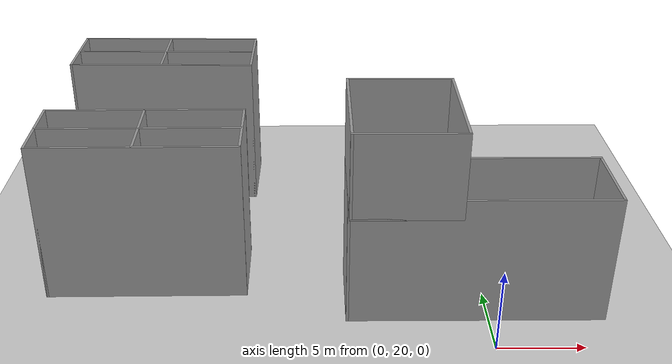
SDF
<sdf version="1.7">
 <world name="default">
  <model name="ground_plane">
   <static>1</static>
   <link name="link">
    <collision name="collision">
     <geometry><plane><normal>0 0 1</normal><size>100 100</size></plane></geometry>
     <surface><friction><ode><mu>100</mu><mu2>50</mu2></ode></friction></surface>
    </collision>
    <visual name="visual">
     <cast_shadows>0</cast_shadows>
     <geometry><plane><normal>0 0 1</normal><size>100 100</size></plane></geometry>
     <material>
      <script><uri>file://media/materials/scripts/gazebo.material</uri><name>Gazebo/Grey</name></script>
     </material>
    </visual>
   </link>
  </model>
  <model name="building5_clone_clone_clone_0">
   <link name="Wall_64">
    <pose>-1e-06 -4.8275 0 0 -0 0</pose>
    <inertial>
     <mass>1</mass>
     <inertia><ixx>1</ixx><ixy>0</ixy><ixz>0</ixz><iyy>1</iyy><iyz>0</iyz><izz>1</izz></inertia>
    </inertial>
    <visual name="Wall_64_Visual">
     <pose>0 0 5 0 -0 0</pose>
     <geometry><box><size>12 0.15 10</size></box></geometry>
     <material>
      <script><uri>file://media/materials/scripts/gazebo.material</uri><name>Gazebo/Grey</name></script>
      <ambient>0.5 0.5 0.5 1</ambient>
      <shader type="pixel"><normal_map>__default__</normal_map></shader>
      <diffuse>0.5 0.5 0.5 1</diffuse>
      <specular>0.5 0.5 0.5 1</specular>
      <emissive>0 0 0 1</emissive>
     </material>
     <meta><layer>0</layer></meta>
    </visual>
    <collision name="Wall_64_Collision">
     <pose>0 0 5 0 -0 0</pose>
     <geometry><box><size>12 0.15 10</size></box></geometry>
     <surface>
      <friction>
       <ode><mu>1</mu><mu2>1</mu2><fdir1>0 0 0</fdir1><slip1>0</slip1><slip2>0</slip2></ode>
       <torsional>
        <coefficient>1</coefficient>
        <patch_radius>0</patch_radius>
        <surface_radius>0</surface_radius>
        <use_patch_radius>1</use_patch_radius>
        <ode><slip>0</slip></ode>
       </torsional>
      </friction>
      <bounce><restitution_coefficient>0</restitution_coefficient><threshold>1e+06</threshold></bounce>
      <contact>
       <collide_without_contact>0</collide_without_contact>
       <collide_without_contact_bitmask>1</collide_without_contact_bitmask>
       <collide_bitmask>1</collide_bitmask>
       <ode>
        <soft_cfm>0</soft_cfm>
        <soft_erp>0.2</soft_erp>
        <kp>1e+13</kp>
        <kd>1</kd>
        <max_vel>0.01</max_vel>
        <min_depth>0</min_depth>
       </ode>
       <bullet>
        <split_impulse>1</split_impulse>
        <split_impulse_penetration_threshold>-0.01</split_impulse_penetration_threshold>
        <soft_cfm>0</soft_cfm>
        <soft_erp>0.2</soft_erp>
        <kp>1e+13</kp>
        <kd>1</kd>
       </bullet>
      </contact>
     </surface>
    </collision>
   </link>
   <link name="Wall_65">
    <pose>5.925 -2.4025 0 0 -0 1.5708</pose>
    <inertial>
     <mass>1</mass>
     <inertia><ixx>1</ixx><ixy>0</ixy><ixz>0</ixz><iyy>1</iyy><iyz>0</iyz><izz>1</izz></inertia>
    </inertial>
    <visual name="Wall_65_Visual">
     <pose>0 0 5 0 -0 0</pose>
     <geometry><box><size>5 0.15 10</size></box></geometry>
     <material>
      <script><uri>file://media/materials/scripts/gazebo.material</uri><name>Gazebo/Grey</name></script>
      <ambient>0.5 0.5 0.5 1</ambient>
      <shader type="pixel"><normal_map>__default__</normal_map></shader>
      <diffuse>0.5 0.5 0.5 1</diffuse>
      <specular>0.5 0.5 0.5 1</specular>
      <emissive>0 0 0 1</emissive>
     </material>
     <meta><layer>0</layer></meta>
    </visual>
    <collision name="Wall_65_Collision">
     <pose>0 0 5 0 -0 0</pose>
     <geometry><box><size>5 0.15 10</size></box></geometry>
     <surface>
      <friction>
       <ode><mu>1</mu><mu2>1</mu2><fdir1>0 0 0</fdir1><slip1>0</slip1><slip2>0</slip2></ode>
       <torsional>
        <coefficient>1</coefficient>
        <patch_radius>0</patch_radius>
        <surface_radius>0</surface_radius>
        <use_patch_radius>1</use_patch_radius>
        <ode><slip>0</slip></ode>
       </torsional>
      </friction>
      <bounce><restitution_coefficient>0</restitution_coefficient><threshold>1e+06</threshold></bounce>
      <contact>
       <collide_without_contact>0</collide_without_contact>
       <collide_without_contact_bitmask>1</collide_without_contact_bitmask>
       <collide_bitmask>1</collide_bitmask>
       <ode>
        <soft_cfm>0</soft_cfm>
        <soft_erp>0.2</soft_erp>
        <kp>1e+13</kp>
        <kd>1</kd>
        <max_vel>0.01</max_vel>
        <min_depth>0</min_depth>
       </ode>
       <bullet>
        <split_impulse>1</split_impulse>
        <split_impulse_penetration_threshold>-0.01</split_impulse_penetration_threshold>
        <soft_cfm>0</soft_cfm>
        <soft_erp>0.2</soft_erp>
        <kp>1e+13</kp>
        <kd>1</kd>
       </bullet>
      </contact>
     </surface>
    </collision>
   </link>
   <link name="Wall_66">
    <pose>0 0.0225 0 0 -0 3.14159</pose>
    <inertial>
     <mass>1</mass>
     <inertia><ixx>1</ixx><ixy>0</ixy><ixz>0</ixz><iyy>1</iyy><iyz>0</iyz><izz>1</izz></inertia>
    </inertial>
    <visual name="Wall_66_Visual">
     <pose>0 0 5 0 -0 0</pose>
     <geometry><box><size>12 0.15 10</size></box></geometry>
     <material>
      <script><uri>file://media/materials/scripts/gazebo.material</uri><name>Gazebo/Grey</name></script>
      <ambient>0.5 0.5 0.5 1</ambient>
      <shader type="pixel"><normal_map>__default__</normal_map></shader>
      <diffuse>0.5 0.5 0.5 1</diffuse>
      <specular>0.5 0.5 0.5 1</specular>
      <emissive>0 0 0 1</emissive>
     </material>
     <meta><layer>0</layer></meta>
    </visual>
    <collision name="Wall_66_Collision">
     <pose>0 0 5 0 -0 0</pose>
     <geometry><box><size>12 0.15 10</size></box></geometry>
     <surface>
      <friction>
       <ode><mu>1</mu><mu2>1</mu2><fdir1>0 0 0</fdir1><slip1>0</slip1><slip2>0</slip2></ode>
       <torsional>
        <coefficient>1</coefficient>
        <patch_radius>0</patch_radius>
        <surface_radius>0</surface_radius>
        <use_patch_radius>1</use_patch_radius>
        <ode><slip>0</slip></ode>
       </torsional>
      </friction>
      <bounce><restitution_coefficient>0</restitution_coefficient><threshold>1e+06</threshold></bounce>
      <contact>
       <collide_without_contact>0</collide_without_contact>
       <collide_without_contact_bitmask>1</collide_without_contact_bitmask>
       <collide_bitmask>1</collide_bitmask>
       <ode>
        <soft_cfm>0</soft_cfm>
        <soft_erp>0.2</soft_erp>
        <kp>1e+13</kp>
        <kd>1</kd>
        <max_vel>0.01</max_vel>
        <min_depth>0</min_depth>
       </ode>
       <bullet>
        <split_impulse>1</split_impulse>
        <split_impulse_penetration_threshold>-0.01</split_impulse_penetration_threshold>
        <soft_cfm>0</soft_cfm>
        <soft_erp>0.2</soft_erp>
        <kp>1e+13</kp>
        <kd>1</kd>
       </bullet>
      </contact>
     </surface>
    </collision>
   </link>
   <link name="Wall_67">
    <pose>-5.925 -2.4025 0 0 0 -1.5708</pose>
    <inertial>
     <mass>1</mass>
     <inertia><ixx>1</ixx><ixy>0</ixy><ixz>0</ixz><iyy>1</iyy><iyz>0</iyz><izz>1</izz></inertia>
    </inertial>
    <visual name="Wall_67_Visual">
     <pose>0 0 5 0 -0 0</pose>
     <geometry><box><size>5 0.15 10</size></box></geometry>
     <material>
      <script><uri>file://media/materials/scripts/gazebo.material</uri><name>Gazebo/Grey</name></script>
      <ambient>0.5 0.5 0.5 1</ambient>
      <shader type="pixel"><normal_map>__default__</normal_map></shader>
      <diffuse>0.5 0.5 0.5 1</diffuse>
      <specular>0.5 0.5 0.5 1</specular>
      <emissive>0 0 0 1</emissive>
     </material>
     <meta><layer>0</layer></meta>
    </visual>
    <collision name="Wall_67_Collision">
     <pose>0 0 5 0 -0 0</pose>
     <geometry><box><size>5 0.15 10</size></box></geometry>
     <surface>
      <friction>
       <ode><mu>1</mu><mu2>1</mu2><fdir1>0 0 0</fdir1><slip1>0</slip1><slip2>0</slip2></ode>
       <torsional>
        <coefficient>1</coefficient>
        <patch_radius>0</patch_radius>
        <surface_radius>0</surface_radius>
        <use_patch_radius>1</use_patch_radius>
        <ode><slip>0</slip></ode>
       </torsional>
      </friction>
      <bounce><restitution_coefficient>0</restitution_coefficient><threshold>1e+06</threshold></bounce>
      <contact>
       <collide_without_contact>0</collide_without_contact>
       <collide_without_contact_bitmask>1</collide_without_contact_bitmask>
       <collide_bitmask>1</collide_bitmask>
       <ode>
        <soft_cfm>0</soft_cfm>
        <soft_erp>0.2</soft_erp>
        <kp>1e+13</kp>
        <kd>1</kd>
        <max_vel>0.01</max_vel>
        <min_depth>0</min_depth>
       </ode>
       <bullet>
        <split_impulse>1</split_impulse>
        <split_impulse_penetration_threshold>-0.01</split_impulse_penetration_threshold>
        <soft_cfm>0</soft_cfm>
        <soft_erp>0.2</soft_erp>
        <kp>1e+13</kp>
        <kd>1</kd>
       </bullet>
      </contact>
     </surface>
    </collision>
   </link>
   <link name="Wall_69">
    <pose>0 -2.3885 0 0 0 -1.5708</pose>
    <inertial>
     <mass>1</mass>
     <inertia><ixx>1</ixx><ixy>0</ixy><ixz>0</ixz><iyy>1</iyy><iyz>0</iyz><izz>1</izz></inertia>
    </inertial>
    <visual name="Wall_69_Visual">
     <pose>0 0 5 0 -0 0</pose>
     <geometry><box><size>4.9 0.15 10</size></box></geometry>
     <material>
      <script><uri>file://media/materials/scripts/gazebo.material</uri><name>Gazebo/Grey</name></script>
      <ambient>0.5 0.5 0.5 1</ambient>
      <shader type="pixel"><normal_map>__default__</normal_map></shader>
      <diffuse>0.5 0.5 0.5 1</diffuse>
      <specular>0.5 0.5 0.5 1</specular>
      <emissive>0 0 0 1</emissive>
     </material>
     <meta><layer>0</layer></meta>
    </visual>
    <collision name="Wall_69_Collision">
     <pose>0 0 5 0 -0 0</pose>
     <geometry><box><size>4.9 0.15 10</size></box></geometry>
     <surface>
      <friction>
       <ode><mu>1</mu><mu2>1</mu2><fdir1>0 0 0</fdir1><slip1>0</slip1><slip2>0</slip2></ode>
       <torsional>
        <coefficient>1</coefficient>
        <patch_radius>0</patch_radius>
        <surface_radius>0</surface_radius>
        <use_patch_radius>1</use_patch_radius>
        <ode><slip>0</slip></ode>
       </torsional>
      </friction>
      <bounce><restitution_coefficient>0</restitution_coefficient><threshold>1e+06</threshold></bounce>
      <contact>
       <collide_without_contact>0</collide_without_contact>
       <collide_without_contact_bitmask>1</collide_without_contact_bitmask>
       <collide_bitmask>1</collide_bitmask>
       <ode>
        <soft_cfm>0</soft_cfm>
        <soft_erp>0.2</soft_erp>
        <kp>1e+13</kp>
        <kd>1</kd>
        <max_vel>0.01</max_vel>
        <min_depth>0</min_depth>
       </ode>
       <bullet>
        <split_impulse>1</split_impulse>
        <split_impulse_penetration_threshold>-0.01</split_impulse_penetration_threshold>
        <soft_cfm>0</soft_cfm>
        <soft_erp>0.2</soft_erp>
        <kp>1e+13</kp>
        <kd>1</kd>
       </bullet>
      </contact>
     </surface>
    </collision>
   </link>
   <link name="Wall_74">
    <pose>-0.024 -2.4605 0 0 -0 0</pose>
    <inertial>
     <mass>1</mass>
     <inertia><ixx>1</ixx><ixy>0</ixy><ixz>0</ixz><iyy>1</iyy><iyz>0</iyz><izz>1</izz></inertia>
    </inertial>
    <visual name="Wall_74_Visual">
     <pose>0 0 5 0 -0 0</pose>
     <geometry><box><size>11.9 0.15 10</size></box></geometry>
     <material>
      <script><uri>file://media/materials/scripts/gazebo.material</uri><name>Gazebo/Grey</name></script>
      <ambient>0.5 0.5 0.5 1</ambient>
      <shader type="pixel"><normal_map>__default__</normal_map></shader>
      <diffuse>0.5 0.5 0.5 1</diffuse>
      <specular>0.5 0.5 0.5 1</specular>
      <emissive>0 0 0 1</emissive>
     </material>
     <meta><layer>0</layer></meta>
    </visual>
    <collision name="Wall_74_Collision">
     <pose>0 0 5 0 -0 0</pose>
     <geometry><box><size>11.9 0.15 10</size></box></geometry>
     <surface>
      <friction>
       <ode><mu>1</mu><mu2>1</mu2><fdir1>0 0 0</fdir1><slip1>0</slip1><slip2>0</slip2></ode>
       <torsional>
        <coefficient>1</coefficient>
        <patch_radius>0</patch_radius>
        <surface_radius>0</surface_radius>
        <use_patch_radius>1</use_patch_radius>
        <ode><slip>0</slip></ode>
       </torsional>
      </friction>
      <bounce><restitution_coefficient>0</restitution_coefficient><threshold>1e+06</threshold></bounce>
      <contact>
       <collide_without_contact>0</collide_without_contact>
       <collide_without_contact_bitmask>1</collide_without_contact_bitmask>
       <collide_bitmask>1</collide_bitmask>
       <ode>
        <soft_cfm>0</soft_cfm>
        <soft_erp>0.2</soft_erp>
        <kp>1e+13</kp>
        <kd>1</kd>
        <max_vel>0.01</max_vel>
        <min_depth>0</min_depth>
       </ode>
       <bullet>
        <split_impulse>1</split_impulse>
        <split_impulse_penetration_threshold>-0.01</split_impulse_penetration_threshold>
        <soft_cfm>0</soft_cfm>
        <soft_erp>0.2</soft_erp>
        <kp>1e+13</kp>
        <kd>1</kd>
       </bullet>
      </contact>
     </surface>
    </collision>
   </link>
   <static>1</static>
   <pose>-20.0777 29.9559 0 0 -0 0.004024</pose>
  </model>
  <model name="building5_clone_clone_clone_1">
   <link name="Wall_64">
    <pose>-1e-06 -4.8275 0 0 -0 0</pose>
    <inertial>
     <mass>1</mass>
     <inertia><ixx>1</ixx><ixy>0</ixy><ixz>0</ixz><iyy>1</iyy><iyz>0</iyz><izz>1</izz></inertia>
    </inertial>
    <visual name="Wall_64_Visual">
     <pose>0 0 5 0 -0 0</pose>
     <geometry><box><size>12 0.15 10</size></box></geometry>
     <material>
      <script><uri>file://media/materials/scripts/gazebo.material</uri><name>Gazebo/Grey</name></script>
      <ambient>0.5 0.5 0.5 1</ambient>
      <shader type="pixel"><normal_map>__default__</normal_map></shader>
      <diffuse>0.5 0.5 0.5 1</diffuse>
      <specular>0.5 0.5 0.5 1</specular>
      <emissive>0 0 0 1</emissive>
     </material>
     <meta><layer>0</layer></meta>
    </visual>
    <collision name="Wall_64_Collision">
     <pose>0 0 5 0 -0 0</pose>
     <geometry><box><size>12 0.15 10</size></box></geometry>
     <surface>
      <friction>
       <ode><mu>1</mu><mu2>1</mu2><fdir1>0 0 0</fdir1><slip1>0</slip1><slip2>0</slip2></ode>
       <torsional>
        <coefficient>1</coefficient>
        <patch_radius>0</patch_radius>
        <surface_radius>0</surface_radius>
        <use_patch_radius>1</use_patch_radius>
        <ode><slip>0</slip></ode>
       </torsional>
      </friction>
      <bounce><restitution_coefficient>0</restitution_coefficient><threshold>1e+06</threshold></bounce>
      <contact>
       <collide_without_contact>0</collide_without_contact>
       <collide_without_contact_bitmask>1</collide_without_contact_bitmask>
       <collide_bitmask>1</collide_bitmask>
       <ode>
        <soft_cfm>0</soft_cfm>
        <soft_erp>0.2</soft_erp>
        <kp>1e+13</kp>
        <kd>1</kd>
        <max_vel>0.01</max_vel>
        <min_depth>0</min_depth>
       </ode>
       <bullet>
        <split_impulse>1</split_impulse>
        <split_impulse_penetration_threshold>-0.01</split_impulse_penetration_threshold>
        <soft_cfm>0</soft_cfm>
        <soft_erp>0.2</soft_erp>
        <kp>1e+13</kp>
        <kd>1</kd>
       </bullet>
      </contact>
     </surface>
    </collision>
   </link>
   <link name="Wall_65">
    <pose>5.925 -2.4025 0 0 -0 1.5708</pose>
    <inertial>
     <mass>1</mass>
     <inertia><ixx>1</ixx><ixy>0</ixy><ixz>0</ixz><iyy>1</iyy><iyz>0</iyz><izz>1</izz></inertia>
    </inertial>
    <visual name="Wall_65_Visual">
     <pose>0 0 5 0 -0 0</pose>
     <geometry><box><size>5 0.15 10</size></box></geometry>
     <material>
      <script><uri>file://media/materials/scripts/gazebo.material</uri><name>Gazebo/Grey</name></script>
      <ambient>0.5 0.5 0.5 1</ambient>
      <shader type="pixel"><normal_map>__default__</normal_map></shader>
      <diffuse>0.5 0.5 0.5 1</diffuse>
      <specular>0.5 0.5 0.5 1</specular>
      <emissive>0 0 0 1</emissive>
     </material>
     <meta><layer>0</layer></meta>
    </visual>
    <collision name="Wall_65_Collision">
     <pose>0 0 5 0 -0 0</pose>
     <geometry><box><size>5 0.15 10</size></box></geometry>
     <surface>
      <friction>
       <ode><mu>1</mu><mu2>1</mu2><fdir1>0 0 0</fdir1><slip1>0</slip1><slip2>0</slip2></ode>
       <torsional>
        <coefficient>1</coefficient>
        <patch_radius>0</patch_radius>
        <surface_radius>0</surface_radius>
        <use_patch_radius>1</use_patch_radius>
        <ode><slip>0</slip></ode>
       </torsional>
      </friction>
      <bounce><restitution_coefficient>0</restitution_coefficient><threshold>1e+06</threshold></bounce>
      <contact>
       <collide_without_contact>0</collide_without_contact>
       <collide_without_contact_bitmask>1</collide_without_contact_bitmask>
       <collide_bitmask>1</collide_bitmask>
       <ode>
        <soft_cfm>0</soft_cfm>
        <soft_erp>0.2</soft_erp>
        <kp>1e+13</kp>
        <kd>1</kd>
        <max_vel>0.01</max_vel>
        <min_depth>0</min_depth>
       </ode>
       <bullet>
        <split_impulse>1</split_impulse>
        <split_impulse_penetration_threshold>-0.01</split_impulse_penetration_threshold>
        <soft_cfm>0</soft_cfm>
        <soft_erp>0.2</soft_erp>
        <kp>1e+13</kp>
        <kd>1</kd>
       </bullet>
      </contact>
     </surface>
    </collision>
   </link>
   <link name="Wall_66">
    <pose>0 0.0225 0 0 -0 3.14159</pose>
    <inertial>
     <mass>1</mass>
     <inertia><ixx>1</ixx><ixy>0</ixy><ixz>0</ixz><iyy>1</iyy><iyz>0</iyz><izz>1</izz></inertia>
    </inertial>
    <visual name="Wall_66_Visual">
     <pose>0 0 5 0 -0 0</pose>
     <geometry><box><size>12 0.15 10</size></box></geometry>
     <material>
      <script><uri>file://media/materials/scripts/gazebo.material</uri><name>Gazebo/Grey</name></script>
      <ambient>0.5 0.5 0.5 1</ambient>
      <shader type="pixel"><normal_map>__default__</normal_map></shader>
      <diffuse>0.5 0.5 0.5 1</diffuse>
      <specular>0.5 0.5 0.5 1</specular>
      <emissive>0 0 0 1</emissive>
     </material>
     <meta><layer>0</layer></meta>
    </visual>
    <collision name="Wall_66_Collision">
     <pose>0 0 5 0 -0 0</pose>
     <geometry><box><size>12 0.15 10</size></box></geometry>
     <surface>
      <friction>
       <ode><mu>1</mu><mu2>1</mu2><fdir1>0 0 0</fdir1><slip1>0</slip1><slip2>0</slip2></ode>
       <torsional>
        <coefficient>1</coefficient>
        <patch_radius>0</patch_radius>
        <surface_radius>0</surface_radius>
        <use_patch_radius>1</use_patch_radius>
        <ode><slip>0</slip></ode>
       </torsional>
      </friction>
      <bounce><restitution_coefficient>0</restitution_coefficient><threshold>1e+06</threshold></bounce>
      <contact>
       <collide_without_contact>0</collide_without_contact>
       <collide_without_contact_bitmask>1</collide_without_contact_bitmask>
       <collide_bitmask>1</collide_bitmask>
       <ode>
        <soft_cfm>0</soft_cfm>
        <soft_erp>0.2</soft_erp>
        <kp>1e+13</kp>
        <kd>1</kd>
        <max_vel>0.01</max_vel>
        <min_depth>0</min_depth>
       </ode>
       <bullet>
        <split_impulse>1</split_impulse>
        <split_impulse_penetration_threshold>-0.01</split_impulse_penetration_threshold>
        <soft_cfm>0</soft_cfm>
        <soft_erp>0.2</soft_erp>
        <kp>1e+13</kp>
        <kd>1</kd>
       </bullet>
      </contact>
     </surface>
    </collision>
   </link>
   <link name="Wall_67">
    <pose>-5.925 -2.4025 0 0 0 -1.5708</pose>
    <inertial>
     <mass>1</mass>
     <inertia><ixx>1</ixx><ixy>0</ixy><ixz>0</ixz><iyy>1</iyy><iyz>0</iyz><izz>1</izz></inertia>
    </inertial>
    <visual name="Wall_67_Visual">
     <pose>0 0 5 0 -0 0</pose>
     <geometry><box><size>5 0.15 10</size></box></geometry>
     <material>
      <script><uri>file://media/materials/scripts/gazebo.material</uri><name>Gazebo/Grey</name></script>
      <ambient>0.5 0.5 0.5 1</ambient>
      <shader type="pixel"><normal_map>__default__</normal_map></shader>
      <diffuse>0.5 0.5 0.5 1</diffuse>
      <specular>0.5 0.5 0.5 1</specular>
      <emissive>0 0 0 1</emissive>
     </material>
     <meta><layer>0</layer></meta>
    </visual>
    <collision name="Wall_67_Collision">
     <pose>0 0 5 0 -0 0</pose>
     <geometry><box><size>5 0.15 10</size></box></geometry>
     <surface>
      <friction>
       <ode><mu>1</mu><mu2>1</mu2><fdir1>0 0 0</fdir1><slip1>0</slip1><slip2>0</slip2></ode>
       <torsional>
        <coefficient>1</coefficient>
        <patch_radius>0</patch_radius>
        <surface_radius>0</surface_radius>
        <use_patch_radius>1</use_patch_radius>
        <ode><slip>0</slip></ode>
       </torsional>
      </friction>
      <bounce><restitution_coefficient>0</restitution_coefficient><threshold>1e+06</threshold></bounce>
      <contact>
       <collide_without_contact>0</collide_without_contact>
       <collide_without_contact_bitmask>1</collide_without_contact_bitmask>
       <collide_bitmask>1</collide_bitmask>
       <ode>
        <soft_cfm>0</soft_cfm>
        <soft_erp>0.2</soft_erp>
        <kp>1e+13</kp>
        <kd>1</kd>
        <max_vel>0.01</max_vel>
        <min_depth>0</min_depth>
       </ode>
       <bullet>
        <split_impulse>1</split_impulse>
        <split_impulse_penetration_threshold>-0.01</split_impulse_penetration_threshold>
        <soft_cfm>0</soft_cfm>
        <soft_erp>0.2</soft_erp>
        <kp>1e+13</kp>
        <kd>1</kd>
       </bullet>
      </contact>
     </surface>
    </collision>
   </link>
   <link name="Wall_69">
    <pose>0 -2.3885 0 0 0 -1.5708</pose>
    <inertial>
     <mass>1</mass>
     <inertia><ixx>1</ixx><ixy>0</ixy><ixz>0</ixz><iyy>1</iyy><iyz>0</iyz><izz>1</izz></inertia>
    </inertial>
    <visual name="Wall_69_Visual">
     <pose>0 0 5 0 -0 0</pose>
     <geometry><box><size>4.9 0.15 10</size></box></geometry>
     <material>
      <script><uri>file://media/materials/scripts/gazebo.material</uri><name>Gazebo/Grey</name></script>
      <ambient>0.5 0.5 0.5 1</ambient>
      <shader type="pixel"><normal_map>__default__</normal_map></shader>
      <diffuse>0.5 0.5 0.5 1</diffuse>
      <specular>0.5 0.5 0.5 1</specular>
      <emissive>0 0 0 1</emissive>
     </material>
     <meta><layer>0</layer></meta>
    </visual>
    <collision name="Wall_69_Collision">
     <pose>0 0 5 0 -0 0</pose>
     <geometry><box><size>4.9 0.15 10</size></box></geometry>
     <surface>
      <friction>
       <ode><mu>1</mu><mu2>1</mu2><fdir1>0 0 0</fdir1><slip1>0</slip1><slip2>0</slip2></ode>
       <torsional>
        <coefficient>1</coefficient>
        <patch_radius>0</patch_radius>
        <surface_radius>0</surface_radius>
        <use_patch_radius>1</use_patch_radius>
        <ode><slip>0</slip></ode>
       </torsional>
      </friction>
      <bounce><restitution_coefficient>0</restitution_coefficient><threshold>1e+06</threshold></bounce>
      <contact>
       <collide_without_contact>0</collide_without_contact>
       <collide_without_contact_bitmask>1</collide_without_contact_bitmask>
       <collide_bitmask>1</collide_bitmask>
       <ode>
        <soft_cfm>0</soft_cfm>
        <soft_erp>0.2</soft_erp>
        <kp>1e+13</kp>
        <kd>1</kd>
        <max_vel>0.01</max_vel>
        <min_depth>0</min_depth>
       </ode>
       <bullet>
        <split_impulse>1</split_impulse>
        <split_impulse_penetration_threshold>-0.01</split_impulse_penetration_threshold>
        <soft_cfm>0</soft_cfm>
        <soft_erp>0.2</soft_erp>
        <kp>1e+13</kp>
        <kd>1</kd>
       </bullet>
      </contact>
     </surface>
    </collision>
   </link>
   <link name="Wall_74">
    <pose>-0.024 -2.4605 0 0 -0 0</pose>
    <inertial>
     <mass>1</mass>
     <inertia><ixx>1</ixx><ixy>0</ixy><ixz>0</ixz><iyy>1</iyy><iyz>0</iyz><izz>1</izz></inertia>
    </inertial>
    <visual name="Wall_74_Visual">
     <pose>0 0 5 0 -0 0</pose>
     <geometry><box><size>11.9 0.15 10</size></box></geometry>
     <material>
      <script><uri>file://media/materials/scripts/gazebo.material</uri><name>Gazebo/Grey</name></script>
      <ambient>0.5 0.5 0.5 1</ambient>
      <shader type="pixel"><normal_map>__default__</normal_map></shader>
      <diffuse>0.5 0.5 0.5 1</diffuse>
      <specular>0.5 0.5 0.5 1</specular>
      <emissive>0 0 0 1</emissive>
     </material>
     <meta><layer>0</layer></meta>
    </visual>
    <collision name="Wall_74_Collision">
     <pose>0 0 5 0 -0 0</pose>
     <geometry><box><size>11.9 0.15 10</size></box></geometry>
     <surface>
      <friction>
       <ode><mu>1</mu><mu2>1</mu2><fdir1>0 0 0</fdir1><slip1>0</slip1><slip2>0</slip2></ode>
       <torsional>
        <coefficient>1</coefficient>
        <patch_radius>0</patch_radius>
        <surface_radius>0</surface_radius>
        <use_patch_radius>1</use_patch_radius>
        <ode><slip>0</slip></ode>
       </torsional>
      </friction>
      <bounce><restitution_coefficient>0</restitution_coefficient><threshold>1e+06</threshold></bounce>
      <contact>
       <collide_without_contact>0</collide_without_contact>
       <collide_without_contact_bitmask>1</collide_without_contact_bitmask>
       <collide_bitmask>1</collide_bitmask>
       <ode>
        <soft_cfm>0</soft_cfm>
        <soft_erp>0.2</soft_erp>
        <kp>1e+13</kp>
        <kd>1</kd>
        <max_vel>0.01</max_vel>
        <min_depth>0</min_depth>
       </ode>
       <bullet>
        <split_impulse>1</split_impulse>
        <split_impulse_penetration_threshold>-0.01</split_impulse_penetration_threshold>
        <soft_cfm>0</soft_cfm>
        <soft_erp>0.2</soft_erp>
        <kp>1e+13</kp>
        <kd>1</kd>
       </bullet>
      </contact>
     </surface>
    </collision>
   </link>
   <static>1</static>
   <pose>-19.9829 41.8226 0 0 0 -0.019854</pose>
  </model>
  <model name="multistory1_clone_clone">
   <link name="Floor_6">
    <pose>4.5 0 8 0 -0 0</pose>
    <inertial>
     <mass>1</mass>
     <inertia><ixx>1</ixx><ixy>0</ixy><ixz>0</ixz><iyy>1</iyy><iyz>0</iyz><izz>1</izz></inertia>
    </inertial>
    <visual name="Floor_6_Visual">
     <pose>0 0 0.05 0 -0 0</pose>
     <geometry><box><size>6 7 0.1</size></box></geometry>
     <material>
      <script><uri>file://media/materials/scripts/gazebo.material</uri><name>Gazebo/Grey</name></script>
      <ambient>0.5 0.5 0.5 1</ambient>
      <shader type="pixel"><normal_map>__default__</normal_map></shader>
      <diffuse>0.5 0.5 0.5 1</diffuse>
      <specular>0.5 0.5 0.5 1</specular>
      <emissive>0 0 0 1</emissive>
     </material>
     <meta><layer>1</layer></meta>
    </visual>
    <collision name="Floor_6_Collision">
     <pose>0 0 0.05 0 -0 0</pose>
     <geometry><box><size>6 7 0.1</size></box></geometry>
     <surface>
      <friction>
       <ode><mu>1</mu><mu2>1</mu2><fdir1>0 0 0</fdir1><slip1>0</slip1><slip2>0</slip2></ode>
       <torsional>
        <coefficient>1</coefficient>
        <patch_radius>0</patch_radius>
        <surface_radius>0</surface_radius>
        <use_patch_radius>1</use_patch_radius>
        <ode><slip>0</slip></ode>
       </torsional>
      </friction>
      <bounce><restitution_coefficient>0</restitution_coefficient><threshold>1e+06</threshold></bounce>
      <contact>
       <collide_without_contact>0</collide_without_contact>
       <collide_without_contact_bitmask>1</collide_without_contact_bitmask>
       <collide_bitmask>1</collide_bitmask>
       <ode>
        <soft_cfm>0</soft_cfm>
        <soft_erp>0.2</soft_erp>
        <kp>1e+13</kp>
        <kd>1</kd>
        <max_vel>0.01</max_vel>
        <min_depth>0</min_depth>
       </ode>
       <bullet>
        <split_impulse>1</split_impulse>
        <split_impulse_penetration_threshold>-0.01</split_impulse_penetration_threshold>
        <soft_cfm>0</soft_cfm>
        <soft_erp>0.2</soft_erp>
        <kp>1e+13</kp>
        <kd>1</kd>
       </bullet>
      </contact>
     </surface>
    </collision>
   </link>
   <link name="Wall_1">
    <pose>0 -3.425 0 0 -0 0</pose>
    <inertial>
     <mass>1</mass>
     <inertia><ixx>1</ixx><ixy>0</ixy><ixz>0</ixz><iyy>1</iyy><iyz>0</iyz><izz>1</izz></inertia>
    </inertial>
    <visual name="Wall_1_Visual">
     <pose>0 0 4 0 -0 0</pose>
     <geometry><box><size>15 0.15 8</size></box></geometry>
     <material>
      <script><uri>file://media/materials/scripts/gazebo.material</uri><name>Gazebo/Grey</name></script>
      <ambient>0.5 0.5 0.5 1</ambient>
      <shader type="pixel"><normal_map>__default__</normal_map></shader>
      <diffuse>0.5 0.5 0.5 1</diffuse>
      <specular>0.5 0.5 0.5 1</specular>
      <emissive>0 0 0 1</emissive>
     </material>
     <meta><layer>0</layer></meta>
    </visual>
    <collision name="Wall_1_Collision">
     <pose>0 0 4 0 -0 0</pose>
     <geometry><box><size>15 0.15 8</size></box></geometry>
     <surface>
      <friction>
       <ode><mu>1</mu><mu2>1</mu2><fdir1>0 0 0</fdir1><slip1>0</slip1><slip2>0</slip2></ode>
       <torsional>
        <coefficient>1</coefficient>
        <patch_radius>0</patch_radius>
        <surface_radius>0</surface_radius>
        <use_patch_radius>1</use_patch_radius>
        <ode><slip>0</slip></ode>
       </torsional>
      </friction>
      <bounce><restitution_coefficient>0</restitution_coefficient><threshold>1e+06</threshold></bounce>
      <contact>
       <collide_without_contact>0</collide_without_contact>
       <collide_without_contact_bitmask>1</collide_without_contact_bitmask>
       <collide_bitmask>1</collide_bitmask>
       <ode>
        <soft_cfm>0</soft_cfm>
        <soft_erp>0.2</soft_erp>
        <kp>1e+13</kp>
        <kd>1</kd>
        <max_vel>0.01</max_vel>
        <min_depth>0</min_depth>
       </ode>
       <bullet>
        <split_impulse>1</split_impulse>
        <split_impulse_penetration_threshold>-0.01</split_impulse_penetration_threshold>
        <soft_cfm>0</soft_cfm>
        <soft_erp>0.2</soft_erp>
        <kp>1e+13</kp>
        <kd>1</kd>
       </bullet>
      </contact>
     </surface>
    </collision>
   </link>
   <link name="Wall_2">
    <pose>7.425 -1 0 0 -0 1.5708</pose>
    <inertial>
     <mass>1</mass>
     <inertia><ixx>1</ixx><ixy>0</ixy><ixz>0</ixz><iyy>1</iyy><iyz>0</iyz><izz>1</izz></inertia>
    </inertial>
    <visual name="Wall_2_Visual">
     <pose>0 0 4 0 -0 0</pose>
     <geometry><box><size>5 0.15 8</size></box></geometry>
     <material>
      <script><uri>file://media/materials/scripts/gazebo.material</uri><name>Gazebo/Grey</name></script>
      <ambient>0.5 0.5 0.5 1</ambient>
      <shader type="pixel"><normal_map>__default__</normal_map></shader>
      <diffuse>0.5 0.5 0.5 1</diffuse>
      <specular>0.5 0.5 0.5 1</specular>
      <emissive>0 0 0 1</emissive>
     </material>
     <meta><layer>0</layer></meta>
    </visual>
    <collision name="Wall_2_Collision">
     <pose>0 0 4 0 -0 0</pose>
     <geometry><box><size>5 0.15 8</size></box></geometry>
     <surface>
      <friction>
       <ode><mu>1</mu><mu2>1</mu2><fdir1>0 0 0</fdir1><slip1>0</slip1><slip2>0</slip2></ode>
       <torsional>
        <coefficient>1</coefficient>
        <patch_radius>0</patch_radius>
        <surface_radius>0</surface_radius>
        <use_patch_radius>1</use_patch_radius>
        <ode><slip>0</slip></ode>
       </torsional>
      </friction>
      <bounce><restitution_coefficient>0</restitution_coefficient><threshold>1e+06</threshold></bounce>
      <contact>
       <collide_without_contact>0</collide_without_contact>
       <collide_without_contact_bitmask>1</collide_without_contact_bitmask>
       <collide_bitmask>1</collide_bitmask>
       <ode>
        <soft_cfm>0</soft_cfm>
        <soft_erp>0.2</soft_erp>
        <kp>1e+13</kp>
        <kd>1</kd>
        <max_vel>0.01</max_vel>
        <min_depth>0</min_depth>
       </ode>
       <bullet>
        <split_impulse>1</split_impulse>
        <split_impulse_penetration_threshold>-0.01</split_impulse_penetration_threshold>
        <soft_cfm>0</soft_cfm>
        <soft_erp>0.2</soft_erp>
        <kp>1e+13</kp>
        <kd>1</kd>
       </bullet>
      </contact>
     </surface>
    </collision>
   </link>
   <link name="Wall_37">
    <pose>7.425 0 8 0 -0 1.5708</pose>
    <inertial>
     <mass>1</mass>
     <inertia><ixx>1</ixx><ixy>0</ixy><ixz>0</ixz><iyy>1</iyy><iyz>0</iyz><izz>1</izz></inertia>
    </inertial>
    <visual name="Wall_37_Visual">
     <pose>0 0 2.5 0 -0 0</pose>
     <geometry><box><size>7 0.15 5</size></box></geometry>
     <material>
      <script><uri>file://media/materials/scripts/gazebo.material</uri><name>Gazebo/Grey</name></script>
      <ambient>0.5 0.5 0.5 1</ambient>
      <shader type="pixel"><normal_map>__default__</normal_map></shader>
      <diffuse>0.5 0.5 0.5 1</diffuse>
      <specular>0.5 0.5 0.5 1</specular>
      <emissive>0 0 0 1</emissive>
     </material>
     <meta><layer>1</layer></meta>
    </visual>
    <collision name="Wall_37_Collision">
     <pose>0 0 2.5 0 -0 0</pose>
     <geometry><box><size>7 0.15 5</size></box></geometry>
     <surface>
      <friction>
       <ode><mu>1</mu><mu2>1</mu2><fdir1>0 0 0</fdir1><slip1>0</slip1><slip2>0</slip2></ode>
       <torsional>
        <coefficient>1</coefficient>
        <patch_radius>0</patch_radius>
        <surface_radius>0</surface_radius>
        <use_patch_radius>1</use_patch_radius>
        <ode><slip>0</slip></ode>
       </torsional>
      </friction>
      <bounce><restitution_coefficient>0</restitution_coefficient><threshold>1e+06</threshold></bounce>
      <contact>
       <collide_without_contact>0</collide_without_contact>
       <collide_without_contact_bitmask>1</collide_without_contact_bitmask>
       <collide_bitmask>1</collide_bitmask>
       <ode>
        <soft_cfm>0</soft_cfm>
        <soft_erp>0.2</soft_erp>
        <kp>1e+13</kp>
        <kd>1</kd>
        <max_vel>0.01</max_vel>
        <min_depth>0</min_depth>
       </ode>
       <bullet>
        <split_impulse>1</split_impulse>
        <split_impulse_penetration_threshold>-0.01</split_impulse_penetration_threshold>
        <soft_cfm>0</soft_cfm>
        <soft_erp>0.2</soft_erp>
        <kp>1e+13</kp>
        <kd>1</kd>
       </bullet>
      </contact>
     </surface>
    </collision>
   </link>
   <link name="Wall_43">
    <pose>4.5 3.425 8 0 -0 3.14159</pose>
    <inertial>
     <mass>1</mass>
     <inertia><ixx>1</ixx><ixy>0</ixy><ixz>0</ixz><iyy>1</iyy><iyz>0</iyz><izz>1</izz></inertia>
    </inertial>
    <visual name="Wall_43_Visual">
     <pose>0 0 2.5 0 -0 0</pose>
     <geometry><box><size>6 0.15 5</size></box></geometry>
     <material>
      <script><uri>file://media/materials/scripts/gazebo.material</uri><name>Gazebo/Grey</name></script>
      <ambient>0.5 0.5 0.5 1</ambient>
      <shader type="pixel"><normal_map>__default__</normal_map></shader>
      <diffuse>0.5 0.5 0.5 1</diffuse>
      <specular>0.5 0.01 0.5 1</specular>
      <emissive>0 0 0 1</emissive>
     </material>
     <meta><layer>1</layer></meta>
    </visual>
    <collision name="Wall_43_Collision">
     <pose>0 0 2.5 0 -0 0</pose>
     <geometry><box><size>6 0.15 5</size></box></geometry>
     <surface>
      <friction>
       <ode><mu>1</mu><mu2>1</mu2><fdir1>0 0 0</fdir1><slip1>0</slip1><slip2>0</slip2></ode>
       <torsional>
        <coefficient>1</coefficient>
        <patch_radius>0</patch_radius>
        <surface_radius>0</surface_radius>
        <use_patch_radius>1</use_patch_radius>
        <ode><slip>0</slip></ode>
       </torsional>
      </friction>
      <bounce><restitution_coefficient>0</restitution_coefficient><threshold>1e+06</threshold></bounce>
      <contact>
       <collide_without_contact>0</collide_without_contact>
       <collide_without_contact_bitmask>1</collide_without_contact_bitmask>
       <collide_bitmask>1</collide_bitmask>
       <ode>
        <soft_cfm>0</soft_cfm>
        <soft_erp>0.2</soft_erp>
        <kp>1e+13</kp>
        <kd>1</kd>
        <max_vel>0.01</max_vel>
        <min_depth>0</min_depth>
       </ode>
       <bullet>
        <split_impulse>1</split_impulse>
        <split_impulse_penetration_threshold>-0.01</split_impulse_penetration_threshold>
        <soft_cfm>0</soft_cfm>
        <soft_erp>0.2</soft_erp>
        <kp>1e+13</kp>
        <kd>1</kd>
       </bullet>
      </contact>
     </surface>
    </collision>
   </link>
   <link name="Wall_46">
    <pose>1.575 0 8 0 0 -1.5708</pose>
    <inertial>
     <mass>1</mass>
     <inertia><ixx>1</ixx><ixy>0</ixy><ixz>0</ixz><iyy>1</iyy><iyz>0</iyz><izz>1</izz></inertia>
    </inertial>
    <visual name="Wall_46_Visual">
     <pose>0 0 2.5 0 -0 0</pose>
     <geometry><box><size>7 0.15 5</size></box></geometry>
     <material>
      <script><uri>file://media/materials/scripts/gazebo.material</uri><name>Gazebo/Grey</name></script>
      <ambient>0.5 0.5 0.5 1</ambient>
      <shader type="pixel"><normal_map>__default__</normal_map></shader>
      <diffuse>0.5 0.5 0.5 1</diffuse>
      <specular>0.5 0.5 0.5 1</specular>
      <emissive>0 0 0 1</emissive>
     </material>
     <meta><layer>1</layer></meta>
    </visual>
    <collision name="Wall_46_Collision">
     <pose>0 0 2.5 0 -0 0</pose>
     <geometry><box><size>7 0.15 5</size></box></geometry>
     <surface>
      <friction>
       <ode><mu>1</mu><mu2>1</mu2><fdir1>0 0 0</fdir1><slip1>0</slip1><slip2>0</slip2></ode>
       <torsional>
        <coefficient>1</coefficient>
        <patch_radius>0</patch_radius>
        <surface_radius>0</surface_radius>
        <use_patch_radius>1</use_patch_radius>
        <ode><slip>0</slip></ode>
       </torsional>
      </friction>
      <bounce><restitution_coefficient>0</restitution_coefficient><threshold>1e+06</threshold></bounce>
      <contact>
       <collide_without_contact>0</collide_without_contact>
       <collide_without_contact_bitmask>1</collide_without_contact_bitmask>
       <collide_bitmask>1</collide_bitmask>
       <ode>
        <soft_cfm>0</soft_cfm>
        <soft_erp>0.2</soft_erp>
        <kp>1e+13</kp>
        <kd>1</kd>
        <max_vel>0.01</max_vel>
        <min_depth>0</min_depth>
       </ode>
       <bullet>
        <split_impulse>1</split_impulse>
        <split_impulse_penetration_threshold>-0.01</split_impulse_penetration_threshold>
        <soft_cfm>0</soft_cfm>
        <soft_erp>0.2</soft_erp>
        <kp>1e+13</kp>
        <kd>1</kd>
       </bullet>
      </contact>
     </surface>
    </collision>
   </link>
   <link name="Wall_47">
    <pose>4.5 -3.425 8 0 -0 0</pose>
    <inertial>
     <mass>1</mass>
     <inertia><ixx>1</ixx><ixy>0</ixy><ixz>0</ixz><iyy>1</iyy><iyz>0</iyz><izz>1</izz></inertia>
    </inertial>
    <visual name="Wall_47_Visual">
     <pose>0 0 2.5 0 -0 0</pose>
     <geometry><box><size>6 0.15 5</size></box></geometry>
     <material>
      <script><uri>file://media/materials/scripts/gazebo.material</uri><name>Gazebo/Grey</name></script>
      <ambient>0.5 0.5 0.5 1</ambient>
      <shader type="pixel"><normal_map>__default__</normal_map></shader>
      <diffuse>0.5 0.5 0.5 1</diffuse>
      <specular>0.5 0.5 0.5 1</specular>
      <emissive>0 0 0 1</emissive>
     </material>
     <meta><layer>1</layer></meta>
    </visual>
    <collision name="Wall_47_Collision">
     <pose>0 0 2.5 0 -0 0</pose>
     <geometry><box><size>6 0.15 5</size></box></geometry>
     <surface>
      <friction>
       <ode><mu>1</mu><mu2>1</mu2><fdir1>0 0 0</fdir1><slip1>0</slip1><slip2>0</slip2></ode>
       <torsional>
        <coefficient>1</coefficient>
        <patch_radius>0</patch_radius>
        <surface_radius>0</surface_radius>
        <use_patch_radius>1</use_patch_radius>
        <ode><slip>0</slip></ode>
       </torsional>
      </friction>
      <bounce><restitution_coefficient>0</restitution_coefficient><threshold>1e+06</threshold></bounce>
      <contact>
       <collide_without_contact>0</collide_without_contact>
       <collide_without_contact_bitmask>1</collide_without_contact_bitmask>
       <collide_bitmask>1</collide_bitmask>
       <ode>
        <soft_cfm>0</soft_cfm>
        <soft_erp>0.2</soft_erp>
        <kp>1e+13</kp>
        <kd>1</kd>
        <max_vel>0.01</max_vel>
        <min_depth>0</min_depth>
       </ode>
       <bullet>
        <split_impulse>1</split_impulse>
        <split_impulse_penetration_threshold>-0.01</split_impulse_penetration_threshold>
        <soft_cfm>0</soft_cfm>
        <soft_erp>0.2</soft_erp>
        <kp>1e+13</kp>
        <kd>1</kd>
       </bullet>
      </contact>
     </surface>
    </collision>
   </link>
   <link name="Wall_5">
    <pose>0 1.425 0 0 -0 3.14159</pose>
    <inertial>
     <mass>1</mass>
     <inertia><ixx>1</ixx><ixy>0</ixy><ixz>0</ixz><iyy>1</iyy><iyz>0</iyz><izz>1</izz></inertia>
    </inertial>
    <visual name="Wall_5_Visual">
     <pose>0 0 4 0 -0 0</pose>
     <geometry><box><size>15 0.15 8</size></box></geometry>
     <material>
      <script><uri>file://media/materials/scripts/gazebo.material</uri><name>Gazebo/Grey</name></script>
      <ambient>0.5 0.5 0.5 1</ambient>
      <shader type="pixel"><normal_map>__default__</normal_map></shader>
      <diffuse>0.5 0.5 0.5 1</diffuse>
      <specular>0.5 0.5 0.5 1</specular>
      <emissive>0 0 0 1</emissive>
     </material>
     <meta><layer>0</layer></meta>
    </visual>
    <collision name="Wall_5_Collision">
     <pose>0 0 4 0 -0 0</pose>
     <geometry><box><size>15 0.15 8</size></box></geometry>
     <surface>
      <friction>
       <ode><mu>1</mu><mu2>1</mu2><fdir1>0 0 0</fdir1><slip1>0</slip1><slip2>0</slip2></ode>
       <torsional>
        <coefficient>1</coefficient>
        <patch_radius>0</patch_radius>
        <surface_radius>0</surface_radius>
        <use_patch_radius>1</use_patch_radius>
        <ode><slip>0</slip></ode>
       </torsional>
      </friction>
      <bounce><restitution_coefficient>0</restitution_coefficient><threshold>1e+06</threshold></bounce>
      <contact>
       <collide_without_contact>0</collide_without_contact>
       <collide_without_contact_bitmask>1</collide_without_contact_bitmask>
       <collide_bitmask>1</collide_bitmask>
       <ode>
        <soft_cfm>0</soft_cfm>
        <soft_erp>0.2</soft_erp>
        <kp>1e+13</kp>
        <kd>1</kd>
        <max_vel>0.01</max_vel>
        <min_depth>0</min_depth>
       </ode>
       <bullet>
        <split_impulse>1</split_impulse>
        <split_impulse_penetration_threshold>-0.01</split_impulse_penetration_threshold>
        <soft_cfm>0</soft_cfm>
        <soft_erp>0.2</soft_erp>
        <kp>1e+13</kp>
        <kd>1</kd>
       </bullet>
      </contact>
     </surface>
    </collision>
   </link>
   <link name="Wall_6">
    <pose>-7.425 -1 0 0 0 -1.5708</pose>
    <inertial>
     <mass>1</mass>
     <inertia><ixx>1</ixx><ixy>0</ixy><ixz>0</ixz><iyy>1</iyy><iyz>0</iyz><izz>1</izz></inertia>
    </inertial>
    <visual name="Wall_6_Visual">
     <pose>0 0 4 0 -0 0</pose>
     <geometry><box><size>5 0.15 8</size></box></geometry>
     <material>
      <script><uri>file://media/materials/scripts/gazebo.material</uri><name>Gazebo/Grey</name></script>
      <ambient>0.5 0.5 0.5 1</ambient>
      <shader type="pixel"><normal_map>__default__</normal_map></shader>
      <diffuse>0.5 0.5 0.5 1</diffuse>
      <specular>0.5 0.5 0.5 1</specular>
      <emissive>0 0 0 1</emissive>
     </material>
     <meta><layer>0</layer></meta>
    </visual>
    <collision name="Wall_6_Collision">
     <pose>0 0 4 0 -0 0</pose>
     <geometry><box><size>5 0.15 8</size></box></geometry>
     <surface>
      <friction>
       <ode><mu>1</mu><mu2>1</mu2><fdir1>0 0 0</fdir1><slip1>0</slip1><slip2>0</slip2></ode>
       <torsional>
        <coefficient>1</coefficient>
        <patch_radius>0</patch_radius>
        <surface_radius>0</surface_radius>
        <use_patch_radius>1</use_patch_radius>
        <ode><slip>0</slip></ode>
       </torsional>
      </friction>
      <bounce><restitution_coefficient>0</restitution_coefficient><threshold>1e+06</threshold></bounce>
      <contact>
       <collide_without_contact>0</collide_without_contact>
       <collide_without_contact_bitmask>1</collide_without_contact_bitmask>
       <collide_bitmask>1</collide_bitmask>
       <ode>
        <soft_cfm>0</soft_cfm>
        <soft_erp>0.2</soft_erp>
        <kp>1e+13</kp>
        <kd>1</kd>
        <max_vel>0.01</max_vel>
        <min_depth>0</min_depth>
       </ode>
       <bullet>
        <split_impulse>1</split_impulse>
        <split_impulse_penetration_threshold>-0.01</split_impulse_penetration_threshold>
        <soft_cfm>0</soft_cfm>
        <soft_erp>0.2</soft_erp>
        <kp>1e+13</kp>
        <kd>1</kd>
       </bullet>
      </contact>
     </surface>
    </collision>
   </link>
   <static>1</static>
   <pose>-0.742594 24.0062 0 0 -0 3.13834</pose>
  </model>
 </world>
</sdf>
